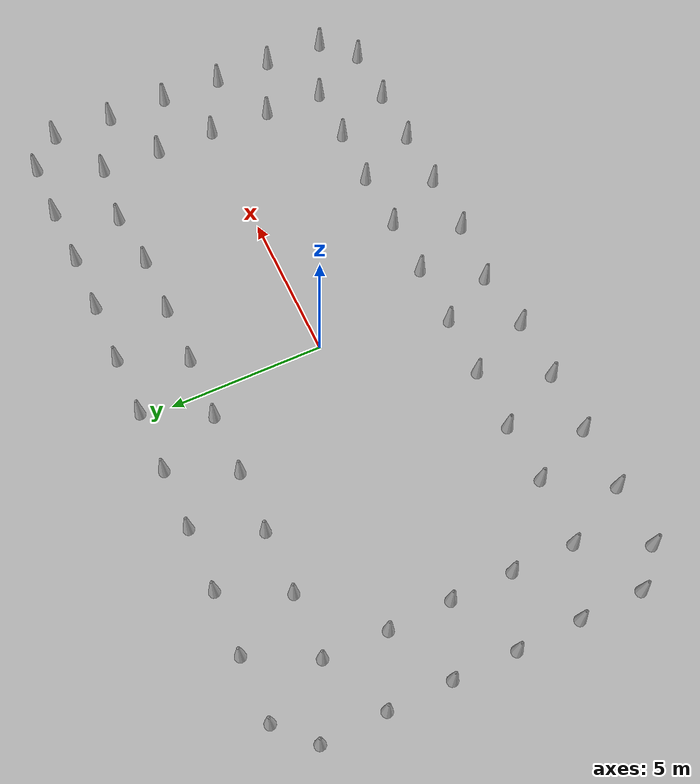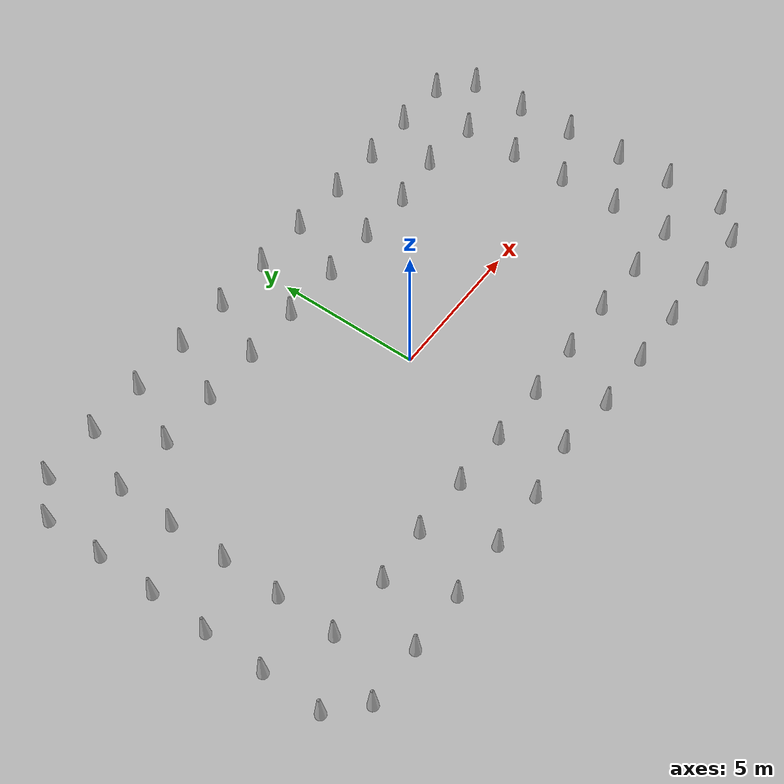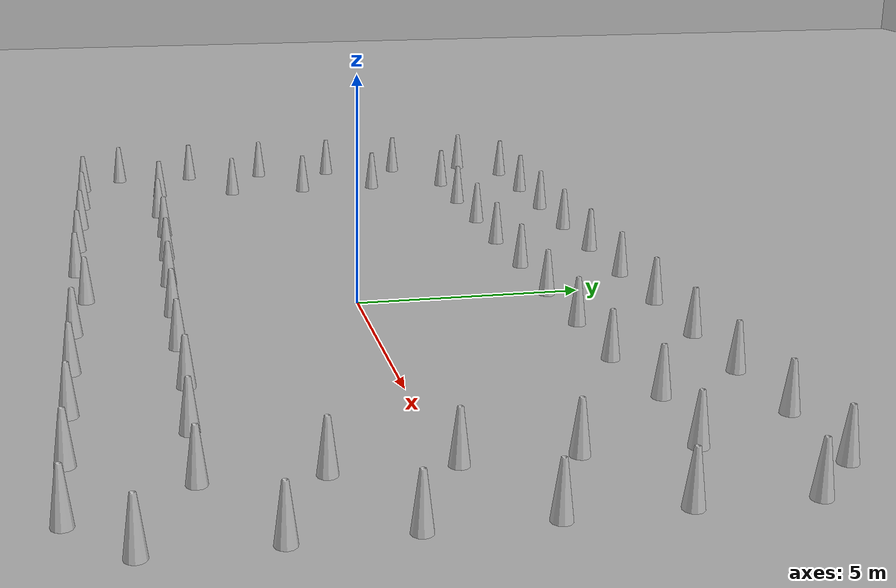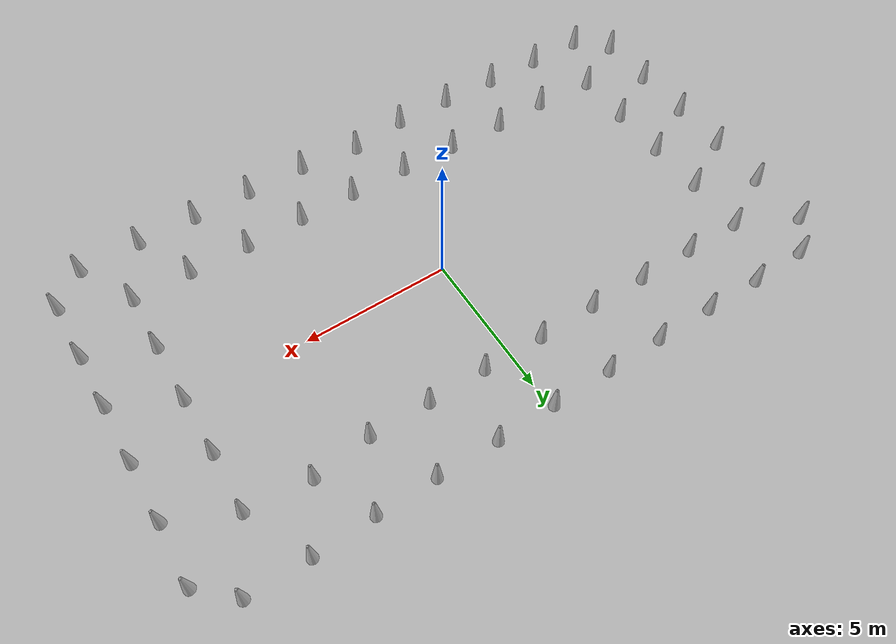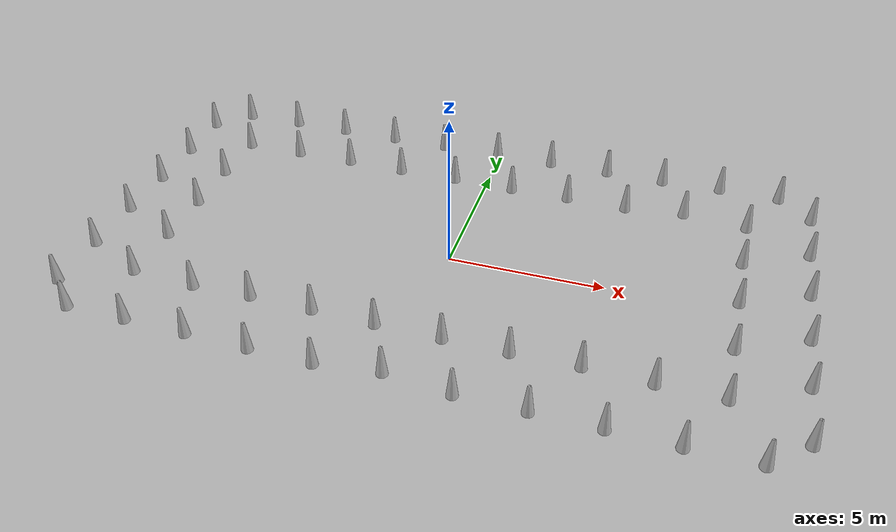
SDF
<sdf version="1.7">
 <world name="default">
  <model name="ground_plane">
   <static>1</static>
   <link name="link">
    <collision name="collision">
     <geometry><plane><normal>0 0 1</normal><size>100 100</size></plane></geometry>
     <surface><friction><ode><mu>100</mu><mu2>50</mu2></ode></friction></surface>
    </collision>
    <visual name="visual">
     <cast_shadows>0</cast_shadows>
     <geometry><plane><normal>0 0 1</normal><size>100 100</size></plane></geometry>
     <material>
      <script><uri>file://media/materials/scripts/gazebo.material</uri><name>Gazebo/Grey</name></script>
     </material>
    </visual>
    <velocity_decay><linear>0</linear><angular>0</angular></velocity_decay>
   </link>
  </model>
  <model name="Construction Cone">
   <link name="link">
    <collision name="collision">
     <geometry>
      <mesh><scale>10 10 10</scale><uri>model://construction_cone/meshes/construction_cone.dae</uri></mesh>
     </geometry>
    </collision>
    <visual name="visual">
     <geometry>
      <mesh><scale>10 10 10</scale><uri>model://construction_cone/meshes/construction_cone.dae</uri></mesh>
     </geometry>
    </visual>
    <velocity_decay><linear>0</linear><angular>0</angular></velocity_decay>
    <inertial>
     <inertia><ixx>1</ixx><ixy>0</ixy><ixz>0</ixz><iyy>1</iyy><iyz>0</iyz><izz>1</izz></inertia>
     <mass>1</mass>
    </inertial>
   </link>
   <pose>-0.101268 -5.78937 0.225548 -4.2e-05 6.7e-05 -0.720502</pose>
   <static>0</static>
  </model>
  <model name="Construction Cone_0">
   <link name="link">
    <collision name="collision">
     <geometry>
      <mesh><scale>10 10 10</scale><uri>model://construction_cone/meshes/construction_cone.dae</uri></mesh>
     </geometry>
    </collision>
    <visual name="visual">
     <geometry>
      <mesh><scale>10 10 10</scale><uri>model://construction_cone/meshes/construction_cone.dae</uri></mesh>
     </geometry>
    </visual>
    <velocity_decay><linear>0</linear><angular>0</angular></velocity_decay>
    <inertial>
     <inertia><ixx>1</ixx><ixy>0</ixy><ixz>0</ixz><iyy>1</iyy><iyz>0</iyz><izz>1</izz></inertia>
     <mass>1</mass>
    </inertial>
   </link>
   <pose>0.010167 5.99373 0.22554 8e-06 -1.6e-05 -0.04956</pose>
   <static>0</static>
  </model>
  <model name="Construction Cone_1">
   <link name="link">
    <collision name="collision">
     <geometry>
      <mesh><scale>10 10 10</scale><uri>model://construction_cone/meshes/construction_cone.dae</uri></mesh>
     </geometry>
    </collision>
    <visual name="visual">
     <geometry>
      <mesh><scale>10 10 10</scale><uri>model://construction_cone/meshes/construction_cone.dae</uri></mesh>
     </geometry>
    </visual>
    <velocity_decay><linear>0</linear><angular>0</angular></velocity_decay>
    <inertial>
     <inertia><ixx>1</ixx><ixy>0</ixy><ixz>0</ixz><iyy>1</iyy><iyz>0</iyz><izz>1</izz></inertia>
     <mass>1</mass>
    </inertial>
   </link>
   <pose>1.03588 -4.03189 0.224662 2e-05 -2.3e-05 -0.022784</pose>
   <static>0</static>
  </model>
  <model name="Construction Cone_clone">
   <link name="link">
    <collision name="collision">
     <geometry>
      <mesh><scale>10 10 10</scale><uri>model://construction_cone/meshes/construction_cone.dae</uri></mesh>
     </geometry>
    </collision>
    <visual name="visual">
     <geometry>
      <mesh><scale>10 10 10</scale><uri>model://construction_cone/meshes/construction_cone.dae</uri></mesh>
     </geometry>
    </visual>
    <velocity_decay><linear>0</linear><angular>0</angular></velocity_decay>
    <inertial>
     <inertia><ixx>1</ixx><ixy>0</ixy><ixz>0</ixz><iyy>1</iyy><iyz>0</iyz><izz>1</izz></inertia>
     <mass>1</mass>
    </inertial>
   </link>
   <pose>1.95359 -6.0042 0.22554 8e-06 -1.6e-05 -0.029289</pose>
   <static>0</static>
  </model>
  <model name="Construction Cone_clone_0">
   <link name="link">
    <collision name="collision">
     <geometry>
      <mesh><scale>10 10 10</scale><uri>model://construction_cone/meshes/construction_cone.dae</uri></mesh>
     </geometry>
    </collision>
    <visual name="visual">
     <geometry>
      <mesh><scale>10 10 10</scale><uri>model://construction_cone/meshes/construction_cone.dae</uri></mesh>
     </geometry>
    </visual>
    <velocity_decay><linear>0</linear><angular>0</angular></velocity_decay>
    <inertial>
     <inertia><ixx>1</ixx><ixy>0</ixy><ixz>0</ixz><iyy>1</iyy><iyz>0</iyz><izz>1</izz></inertia>
     <mass>1</mass>
    </inertial>
   </link>
   <pose>4.00294 -6.00683 0.225525 7.7e-05 -9.7e-05 -0.028538</pose>
   <static>0</static>
  </model>
  <model name="Construction Cone_clone_1">
   <link name="link">
    <collision name="collision">
     <geometry>
      <mesh><scale>10 10 10</scale><uri>model://construction_cone/meshes/construction_cone.dae</uri></mesh>
     </geometry>
    </collision>
    <visual name="visual">
     <geometry>
      <mesh><scale>10 10 10</scale><uri>model://construction_cone/meshes/construction_cone.dae</uri></mesh>
     </geometry>
    </visual>
    <velocity_decay><linear>0</linear><angular>0</angular></velocity_decay>
    <inertial>
     <inertia><ixx>1</ixx><ixy>0</ixy><ixz>0</ixz><iyy>1</iyy><iyz>0</iyz><izz>1</izz></inertia>
     <mass>1</mass>
    </inertial>
   </link>
   <pose>5.99737 -6.00462 0.225517 -9.9e-05 4.9e-05 -0.028861</pose>
   <static>0</static>
  </model>
  <model name="Construction Cone_clone_2">
   <link name="link">
    <collision name="collision">
     <geometry>
      <mesh><scale>10 10 10</scale><uri>model://construction_cone/meshes/construction_cone.dae</uri></mesh>
     </geometry>
    </collision>
    <visual name="visual">
     <geometry>
      <mesh><scale>10 10 10</scale><uri>model://construction_cone/meshes/construction_cone.dae</uri></mesh>
     </geometry>
    </visual>
    <velocity_decay><linear>0</linear><angular>0</angular></velocity_decay>
    <inertial>
     <inertia><ixx>1</ixx><ixy>0</ixy><ixz>0</ixz><iyy>1</iyy><iyz>0</iyz><izz>1</izz></inertia>
     <mass>1</mass>
    </inertial>
   </link>
   <pose>7.95892 -6.00963 0.225525 7.7e-05 -9.7e-05 -0.028514</pose>
   <static>0</static>
  </model>
  <model name="Construction Cone_clone_3">
   <link name="link">
    <collision name="collision">
     <geometry>
      <mesh><scale>10 10 10</scale><uri>model://construction_cone/meshes/construction_cone.dae</uri></mesh>
     </geometry>
    </collision>
    <visual name="visual">
     <geometry>
      <mesh><scale>10 10 10</scale><uri>model://construction_cone/meshes/construction_cone.dae</uri></mesh>
     </geometry>
    </visual>
    <velocity_decay><linear>0</linear><angular>0</angular></velocity_decay>
    <inertial>
     <inertia><ixx>1</ixx><ixy>0</ixy><ixz>0</ixz><iyy>1</iyy><iyz>0</iyz><izz>1</izz></inertia>
     <mass>1</mass>
    </inertial>
   </link>
   <pose>-2.05172 -6.03054 0.224663 1.4e-05 -2.8e-05 -0.029409</pose>
   <static>0</static>
  </model>
  <model name="Construction Cone_clone_4">
   <link name="link">
    <collision name="collision">
     <geometry>
      <mesh><scale>10 10 10</scale><uri>model://construction_cone/meshes/construction_cone.dae</uri></mesh>
     </geometry>
    </collision>
    <visual name="visual">
     <geometry>
      <mesh><scale>10 10 10</scale><uri>model://construction_cone/meshes/construction_cone.dae</uri></mesh>
     </geometry>
    </visual>
    <velocity_decay><linear>0</linear><angular>0</angular></velocity_decay>
    <inertial>
     <inertia><ixx>1</ixx><ixy>0</ixy><ixz>0</ixz><iyy>1</iyy><iyz>0</iyz><izz>1</izz></inertia>
     <mass>1</mass>
    </inertial>
   </link>
   <pose>-4.0299 -6.01906 0.224662 2.8e-05 -1.2e-05 -0.028564</pose>
   <static>0</static>
  </model>
  <model name="Construction Cone_0_clone_3_clone_1">
   <link name="link">
    <collision name="collision">
     <geometry>
      <mesh><scale>10 10 10</scale><uri>model://construction_cone/meshes/construction_cone.dae</uri></mesh>
     </geometry>
    </collision>
    <visual name="visual">
     <geometry>
      <mesh><scale>10 10 10</scale><uri>model://construction_cone/meshes/construction_cone.dae</uri></mesh>
     </geometry>
    </visual>
    <velocity_decay><linear>0</linear><angular>0</angular></velocity_decay>
    <inertial>
     <inertia><ixx>1</ixx><ixy>0</ixy><ixz>0</ixz><iyy>1</iyy><iyz>0</iyz><izz>1</izz></inertia>
     <mass>1</mass>
    </inertial>
   </link>
   <pose>-4.00231 5.97932 0.224663 1.4e-05 -2.8e-05 -0.022166</pose>
   <static>0</static>
  </model>
  <model name="Construction Cone_0_clone_3_clone_2">
   <link name="link">
    <collision name="collision">
     <geometry>
      <mesh><scale>10 10 10</scale><uri>model://construction_cone/meshes/construction_cone.dae</uri></mesh>
     </geometry>
    </collision>
    <visual name="visual">
     <geometry>
      <mesh><scale>10 10 10</scale><uri>model://construction_cone/meshes/construction_cone.dae</uri></mesh>
     </geometry>
    </visual>
    <velocity_decay><linear>0</linear><angular>0</angular></velocity_decay>
    <inertial>
     <inertia><ixx>1</ixx><ixy>0</ixy><ixz>0</ixz><iyy>1</iyy><iyz>0</iyz><izz>1</izz></inertia>
     <mass>1</mass>
    </inertial>
   </link>
   <pose>-2.03982 5.98994 0.22554 1.6e-05 -7e-06 -0.022505</pose>
   <static>0</static>
  </model>
  <model name="Construction Cone_0_clone_3_clone_3">
   <link name="link">
    <collision name="collision">
     <geometry>
      <mesh><scale>10 10 10</scale><uri>model://construction_cone/meshes/construction_cone.dae</uri></mesh>
     </geometry>
    </collision>
    <visual name="visual">
     <geometry>
      <mesh><scale>10 10 10</scale><uri>model://construction_cone/meshes/construction_cone.dae</uri></mesh>
     </geometry>
    </visual>
    <velocity_decay><linear>0</linear><angular>0</angular></velocity_decay>
    <inertial>
     <inertia><ixx>1</ixx><ixy>0</ixy><ixz>0</ixz><iyy>1</iyy><iyz>0</iyz><izz>1</izz></inertia>
     <mass>1</mass>
    </inertial>
   </link>
   <pose>1.9993 6.01297 0.224663 1.4e-05 -2.8e-05 -0.02285</pose>
   <static>0</static>
  </model>
  <model name="Construction Cone_clone_2_clone">
   <link name="link">
    <collision name="collision">
     <geometry>
      <mesh><scale>10 10 10</scale><uri>model://construction_cone/meshes/construction_cone.dae</uri></mesh>
     </geometry>
    </collision>
    <visual name="visual">
     <geometry>
      <mesh><scale>10 10 10</scale><uri>model://construction_cone/meshes/construction_cone.dae</uri></mesh>
     </geometry>
    </visual>
    <velocity_decay><linear>0</linear><angular>0</angular></velocity_decay>
    <inertial>
     <inertia><ixx>1</ixx><ixy>0</ixy><ixz>0</ixz><iyy>1</iyy><iyz>0</iyz><izz>1</izz></inertia>
     <mass>1</mass>
    </inertial>
   </link>
   <pose>9.95852 -5.99311 0.225525 7.7e-05 -9.7e-05 -0.028497</pose>
   <static>0</static>
  </model>
  <model name="Construction Cone_clone_2_clone_0">
   <link name="link">
    <collision name="collision">
     <geometry>
      <mesh><scale>10 10 10</scale><uri>model://construction_cone/meshes/construction_cone.dae</uri></mesh>
     </geometry>
    </collision>
    <visual name="visual">
     <geometry>
      <mesh><scale>10 10 10</scale><uri>model://construction_cone/meshes/construction_cone.dae</uri></mesh>
     </geometry>
    </visual>
    <velocity_decay><linear>0</linear><angular>0</angular></velocity_decay>
    <inertial>
     <inertia><ixx>1</ixx><ixy>0</ixy><ixz>0</ixz><iyy>1</iyy><iyz>0</iyz><izz>1</izz></inertia>
     <mass>1</mass>
    </inertial>
   </link>
   <pose>11.0426 -4.98841 0.22554 8e-06 -1.6e-05 -0.029536</pose>
   <static>0</static>
  </model>
  <model name="Construction Cone_clone_2_clone_1">
   <link name="link">
    <collision name="collision">
     <geometry>
      <mesh><scale>10 10 10</scale><uri>model://construction_cone/meshes/construction_cone.dae</uri></mesh>
     </geometry>
    </collision>
    <visual name="visual">
     <geometry>
      <mesh><scale>10 10 10</scale><uri>model://construction_cone/meshes/construction_cone.dae</uri></mesh>
     </geometry>
    </visual>
    <velocity_decay><linear>0</linear><angular>0</angular></velocity_decay>
    <inertial>
     <inertia><ixx>1</ixx><ixy>0</ixy><ixz>0</ixz><iyy>1</iyy><iyz>0</iyz><izz>1</izz></inertia>
     <mass>1</mass>
    </inertial>
   </link>
   <pose>11.0228 -2.93825 0.224663 1.4e-05 -2.8e-05 -0.028687</pose>
   <static>0</static>
  </model>
  <model name="Construction Cone_clone_2_clone_2">
   <link name="link">
    <collision name="collision">
     <geometry>
      <mesh><scale>10 10 10</scale><uri>model://construction_cone/meshes/construction_cone.dae</uri></mesh>
     </geometry>
    </collision>
    <visual name="visual">
     <geometry>
      <mesh><scale>10 10 10</scale><uri>model://construction_cone/meshes/construction_cone.dae</uri></mesh>
     </geometry>
    </visual>
    <velocity_decay><linear>0</linear><angular>0</angular></velocity_decay>
    <inertial>
     <inertia><ixx>1</ixx><ixy>0</ixy><ixz>0</ixz><iyy>1</iyy><iyz>0</iyz><izz>1</izz></inertia>
     <mass>1</mass>
    </inertial>
   </link>
   <pose>11.006 -1.01301 0.225525 7.7e-05 -9.7e-05 -0.028544</pose>
   <static>0</static>
  </model>
  <model name="Construction Cone_clone_2_clone_3">
   <link name="link">
    <collision name="collision">
     <geometry>
      <mesh><scale>10 10 10</scale><uri>model://construction_cone/meshes/construction_cone.dae</uri></mesh>
     </geometry>
    </collision>
    <visual name="visual">
     <geometry>
      <mesh><scale>10 10 10</scale><uri>model://construction_cone/meshes/construction_cone.dae</uri></mesh>
     </geometry>
    </visual>
    <velocity_decay><linear>0</linear><angular>0</angular></velocity_decay>
    <inertial>
     <inertia><ixx>1</ixx><ixy>0</ixy><ixz>0</ixz><iyy>1</iyy><iyz>0</iyz><izz>1</izz></inertia>
     <mass>1</mass>
    </inertial>
   </link>
   <pose>10.9984 1.02945 0.224663 1.4e-05 -2.8e-05 -0.028687</pose>
   <static>0</static>
  </model>
  <model name="Construction Cone_clone_2_clone_4">
   <link name="link">
    <collision name="collision">
     <geometry>
      <mesh><scale>10 10 10</scale><uri>model://construction_cone/meshes/construction_cone.dae</uri></mesh>
     </geometry>
    </collision>
    <visual name="visual">
     <geometry>
      <mesh><scale>10 10 10</scale><uri>model://construction_cone/meshes/construction_cone.dae</uri></mesh>
     </geometry>
    </visual>
    <velocity_decay><linear>0</linear><angular>0</angular></velocity_decay>
    <inertial>
     <inertia><ixx>1</ixx><ixy>0</ixy><ixz>0</ixz><iyy>1</iyy><iyz>0</iyz><izz>1</izz></inertia>
     <mass>1</mass>
    </inertial>
   </link>
   <pose>10.9743 3.03431 0.225525 7.7e-05 -9.7e-05 -0.02856</pose>
   <static>0</static>
  </model>
  <model name="Construction Cone_clone_2_clone_5">
   <link name="link">
    <collision name="collision">
     <geometry>
      <mesh><scale>10 10 10</scale><uri>model://construction_cone/meshes/construction_cone.dae</uri></mesh>
     </geometry>
    </collision>
    <visual name="visual">
     <geometry>
      <mesh><scale>10 10 10</scale><uri>model://construction_cone/meshes/construction_cone.dae</uri></mesh>
     </geometry>
    </visual>
    <velocity_decay><linear>0</linear><angular>0</angular></velocity_decay>
    <inertial>
     <inertia><ixx>1</ixx><ixy>0</ixy><ixz>0</ixz><iyy>1</iyy><iyz>0</iyz><izz>1</izz></inertia>
     <mass>1</mass>
    </inertial>
   </link>
   <pose>11.0012 5.03417 0.225525 7.7e-05 -9.7e-05 -0.028544</pose>
   <static>0</static>
  </model>
  <model name="Construction Cone_clone_2_clone_6">
   <link name="link">
    <collision name="collision">
     <geometry>
      <mesh><scale>10 10 10</scale><uri>model://construction_cone/meshes/construction_cone.dae</uri></mesh>
     </geometry>
    </collision>
    <visual name="visual">
     <geometry>
      <mesh><scale>10 10 10</scale><uri>model://construction_cone/meshes/construction_cone.dae</uri></mesh>
     </geometry>
    </visual>
    <velocity_decay><linear>0</linear><angular>0</angular></velocity_decay>
    <inertial>
     <inertia><ixx>1</ixx><ixy>0</ixy><ixz>0</ixz><iyy>1</iyy><iyz>0</iyz><izz>1</izz></inertia>
     <mass>1</mass>
    </inertial>
   </link>
   <pose>9.94514 6.03179 0.225525 7.7e-05 -9.7e-05 -0.028541</pose>
   <static>0</static>
  </model>
  <model name="Construction Cone_clone_2_clone_7">
   <link name="link">
    <collision name="collision">
     <geometry>
      <mesh><scale>10 10 10</scale><uri>model://construction_cone/meshes/construction_cone.dae</uri></mesh>
     </geometry>
    </collision>
    <visual name="visual">
     <geometry>
      <mesh><scale>10 10 10</scale><uri>model://construction_cone/meshes/construction_cone.dae</uri></mesh>
     </geometry>
    </visual>
    <velocity_decay><linear>0</linear><angular>0</angular></velocity_decay>
    <inertial>
     <inertia><ixx>1</ixx><ixy>0</ixy><ixz>0</ixz><iyy>1</iyy><iyz>0</iyz><izz>1</izz></inertia>
     <mass>1</mass>
    </inertial>
   </link>
   <pose>7.97236 6.05343 0.225569 0.000124 -0.000139 -0.955824</pose>
   <static>0</static>
  </model>
  <model name="Construction Cone_clone_2_clone_8">
   <link name="link">
    <collision name="collision">
     <geometry>
      <mesh><scale>10 10 10</scale><uri>model://construction_cone/meshes/construction_cone.dae</uri></mesh>
     </geometry>
    </collision>
    <visual name="visual">
     <geometry>
      <mesh><scale>10 10 10</scale><uri>model://construction_cone/meshes/construction_cone.dae</uri></mesh>
     </geometry>
    </visual>
    <velocity_decay><linear>0</linear><angular>0</angular></velocity_decay>
    <inertial>
     <inertia><ixx>1</ixx><ixy>0</ixy><ixz>0</ixz><iyy>1</iyy><iyz>0</iyz><izz>1</izz></inertia>
     <mass>1</mass>
    </inertial>
   </link>
   <pose>6.00156 5.99399 0.225525 7.7e-05 -9.7e-05 -0.028544</pose>
   <static>0</static>
  </model>
  <model name="Construction Cone_clone_2_clone_9">
   <link name="link">
    <collision name="collision">
     <geometry>
      <mesh><scale>10 10 10</scale><uri>model://construction_cone/meshes/construction_cone.dae</uri></mesh>
     </geometry>
    </collision>
    <visual name="visual">
     <geometry>
      <mesh><scale>10 10 10</scale><uri>model://construction_cone/meshes/construction_cone.dae</uri></mesh>
     </geometry>
    </visual>
    <velocity_decay><linear>0</linear><angular>0</angular></velocity_decay>
    <inertial>
     <inertia><ixx>1</ixx><ixy>0</ixy><ixz>0</ixz><iyy>1</iyy><iyz>0</iyz><izz>1</izz></inertia>
     <mass>1</mass>
    </inertial>
   </link>
   <pose>4.04544 5.99477 0.225515 -6.3e-05 0.000106 -0.028964</pose>
   <static>0</static>
  </model>
  <model name="Construction Cone_clone_2_clone_10">
   <link name="link">
    <collision name="collision">
     <geometry>
      <mesh><scale>10 10 10</scale><uri>model://construction_cone/meshes/construction_cone.dae</uri></mesh>
     </geometry>
    </collision>
    <visual name="visual">
     <geometry>
      <mesh><scale>10 10 10</scale><uri>model://construction_cone/meshes/construction_cone.dae</uri></mesh>
     </geometry>
    </visual>
    <velocity_decay><linear>0</linear><angular>0</angular></velocity_decay>
    <inertial>
     <inertia><ixx>1</ixx><ixy>0</ixy><ixz>0</ixz><iyy>1</iyy><iyz>0</iyz><izz>1</izz></inertia>
     <mass>1</mass>
    </inertial>
   </link>
   <pose>-6.01837 5.9927 0.225515 -6.3e-05 0.000106 -0.028977</pose>
   <static>0</static>
  </model>
  <model name="Construction Cone_clone_2_clone_11">
   <link name="link">
    <collision name="collision">
     <geometry>
      <mesh><scale>10 10 10</scale><uri>model://construction_cone/meshes/construction_cone.dae</uri></mesh>
     </geometry>
    </collision>
    <visual name="visual">
     <geometry>
      <mesh><scale>10 10 10</scale><uri>model://construction_cone/meshes/construction_cone.dae</uri></mesh>
     </geometry>
    </visual>
    <velocity_decay><linear>0</linear><angular>0</angular></velocity_decay>
    <inertial>
     <inertia><ixx>1</ixx><ixy>0</ixy><ixz>0</ixz><iyy>1</iyy><iyz>0</iyz><izz>1</izz></inertia>
     <mass>1</mass>
    </inertial>
   </link>
   <pose>-7.98666 6.01621 0.225515 -6.3e-05 0.000106 -0.029065</pose>
   <static>0</static>
  </model>
  <model name="Construction Cone_clone_2_clone_12">
   <link name="link">
    <collision name="collision">
     <geometry>
      <mesh><scale>10 10 10</scale><uri>model://construction_cone/meshes/construction_cone.dae</uri></mesh>
     </geometry>
    </collision>
    <visual name="visual">
     <geometry>
      <mesh><scale>10 10 10</scale><uri>model://construction_cone/meshes/construction_cone.dae</uri></mesh>
     </geometry>
    </visual>
    <velocity_decay><linear>0</linear><angular>0</angular></velocity_decay>
    <inertial>
     <inertia><ixx>1</ixx><ixy>0</ixy><ixz>0</ixz><iyy>1</iyy><iyz>0</iyz><izz>1</izz></inertia>
     <mass>1</mass>
    </inertial>
   </link>
   <pose>-9.97243 5.98087 0.225525 7.7e-05 -9.7e-05 -0.028541</pose>
   <static>0</static>
  </model>
  <model name="Construction Cone_clone_2_clone_13">
   <link name="link">
    <collision name="collision">
     <geometry>
      <mesh><scale>10 10 10</scale><uri>model://construction_cone/meshes/construction_cone.dae</uri></mesh>
     </geometry>
    </collision>
    <visual name="visual">
     <geometry>
      <mesh><scale>10 10 10</scale><uri>model://construction_cone/meshes/construction_cone.dae</uri></mesh>
     </geometry>
    </visual>
    <velocity_decay><linear>0</linear><angular>0</angular></velocity_decay>
    <inertial>
     <inertia><ixx>1</ixx><ixy>0</ixy><ixz>0</ixz><iyy>1</iyy><iyz>0</iyz><izz>1</izz></inertia>
     <mass>1</mass>
    </inertial>
   </link>
   <pose>-11.0075 4.97609 0.225525 7.7e-05 -9.7e-05 -0.028544</pose>
   <static>0</static>
  </model>
  <model name="Construction Cone_clone_2_clone_14">
   <link name="link">
    <collision name="collision">
     <geometry>
      <mesh><scale>10 10 10</scale><uri>model://construction_cone/meshes/construction_cone.dae</uri></mesh>
     </geometry>
    </collision>
    <visual name="visual">
     <geometry>
      <mesh><scale>10 10 10</scale><uri>model://construction_cone/meshes/construction_cone.dae</uri></mesh>
     </geometry>
    </visual>
    <velocity_decay><linear>0</linear><angular>0</angular></velocity_decay>
    <inertial>
     <inertia><ixx>1</ixx><ixy>0</ixy><ixz>0</ixz><iyy>1</iyy><iyz>0</iyz><izz>1</izz></inertia>
     <mass>1</mass>
    </inertial>
   </link>
   <pose>-10.9735 2.97827 0.225525 7.7e-05 -9.7e-05 -0.028544</pose>
   <static>0</static>
  </model>
  <model name="Construction Cone_clone_2_clone_15">
   <link name="link">
    <collision name="collision">
     <geometry>
      <mesh><scale>10 10 10</scale><uri>model://construction_cone/meshes/construction_cone.dae</uri></mesh>
     </geometry>
    </collision>
    <visual name="visual">
     <geometry>
      <mesh><scale>10 10 10</scale><uri>model://construction_cone/meshes/construction_cone.dae</uri></mesh>
     </geometry>
    </visual>
    <velocity_decay><linear>0</linear><angular>0</angular></velocity_decay>
    <inertial>
     <inertia><ixx>1</ixx><ixy>0</ixy><ixz>0</ixz><iyy>1</iyy><iyz>0</iyz><izz>1</izz></inertia>
     <mass>1</mass>
    </inertial>
   </link>
   <pose>-10.9743 0.995984 0.225525 7.7e-05 -9.7e-05 -0.028543</pose>
   <static>0</static>
  </model>
  <model name="Construction Cone_clone_2_clone_16">
   <link name="link">
    <collision name="collision">
     <geometry>
      <mesh><scale>10 10 10</scale><uri>model://construction_cone/meshes/construction_cone.dae</uri></mesh>
     </geometry>
    </collision>
    <visual name="visual">
     <geometry>
      <mesh><scale>10 10 10</scale><uri>model://construction_cone/meshes/construction_cone.dae</uri></mesh>
     </geometry>
    </visual>
    <velocity_decay><linear>0</linear><angular>0</angular></velocity_decay>
    <inertial>
     <inertia><ixx>1</ixx><ixy>0</ixy><ixz>0</ixz><iyy>1</iyy><iyz>0</iyz><izz>1</izz></inertia>
     <mass>1</mass>
    </inertial>
   </link>
   <pose>-10.9991 -0.983905 0.225525 7.7e-05 -9.7e-05 -0.028558</pose>
   <static>0</static>
  </model>
  <model name="Construction Cone_clone_2_clone_17">
   <link name="link">
    <collision name="collision">
     <geometry>
      <mesh><scale>10 10 10</scale><uri>model://construction_cone/meshes/construction_cone.dae</uri></mesh>
     </geometry>
    </collision>
    <visual name="visual">
     <geometry>
      <mesh><scale>10 10 10</scale><uri>model://construction_cone/meshes/construction_cone.dae</uri></mesh>
     </geometry>
    </visual>
    <velocity_decay><linear>0</linear><angular>0</angular></velocity_decay>
    <inertial>
     <inertia><ixx>1</ixx><ixy>0</ixy><ixz>0</ixz><iyy>1</iyy><iyz>0</iyz><izz>1</izz></inertia>
     <mass>1</mass>
    </inertial>
   </link>
   <pose>-10.9729 -3.00579 0.225525 7.7e-05 -9.7e-05 -0.02856</pose>
   <static>0</static>
  </model>
  <model name="Construction Cone_clone_2_clone_18">
   <link name="link">
    <collision name="collision">
     <geometry>
      <mesh><scale>10 10 10</scale><uri>model://construction_cone/meshes/construction_cone.dae</uri></mesh>
     </geometry>
    </collision>
    <visual name="visual">
     <geometry>
      <mesh><scale>10 10 10</scale><uri>model://construction_cone/meshes/construction_cone.dae</uri></mesh>
     </geometry>
    </visual>
    <velocity_decay><linear>0</linear><angular>0</angular></velocity_decay>
    <inertial>
     <inertia><ixx>1</ixx><ixy>0</ixy><ixz>0</ixz><iyy>1</iyy><iyz>0</iyz><izz>1</izz></inertia>
     <mass>1</mass>
    </inertial>
   </link>
   <pose>-10.9711 -4.98833 0.225515 -6.3e-05 0.000106 -0.029172</pose>
   <static>0</static>
  </model>
  <model name="Construction Cone_clone_2_clone_19">
   <link name="link">
    <collision name="collision">
     <geometry>
      <mesh><scale>10 10 10</scale><uri>model://construction_cone/meshes/construction_cone.dae</uri></mesh>
     </geometry>
    </collision>
    <visual name="visual">
     <geometry>
      <mesh><scale>10 10 10</scale><uri>model://construction_cone/meshes/construction_cone.dae</uri></mesh>
     </geometry>
    </visual>
    <velocity_decay><linear>0</linear><angular>0</angular></velocity_decay>
    <inertial>
     <inertia><ixx>1</ixx><ixy>0</ixy><ixz>0</ixz><iyy>1</iyy><iyz>0</iyz><izz>1</izz></inertia>
     <mass>1</mass>
    </inertial>
   </link>
   <pose>-9.95246 -5.97281 0.225515 -6.3e-05 0.000106 -0.029002</pose>
   <static>0</static>
  </model>
  <model name="Construction Cone_clone_2_clone_20">
   <link name="link">
    <collision name="collision">
     <geometry>
      <mesh><scale>10 10 10</scale><uri>model://construction_cone/meshes/construction_cone.dae</uri></mesh>
     </geometry>
    </collision>
    <visual name="visual">
     <geometry>
      <mesh><scale>10 10 10</scale><uri>model://construction_cone/meshes/construction_cone.dae</uri></mesh>
     </geometry>
    </visual>
    <velocity_decay><linear>0</linear><angular>0</angular></velocity_decay>
    <inertial>
     <inertia><ixx>1</ixx><ixy>0</ixy><ixz>0</ixz><iyy>1</iyy><iyz>0</iyz><izz>1</izz></inertia>
     <mass>1</mass>
    </inertial>
   </link>
   <pose>-8.00717 -5.9722 0.225515 -6.3e-05 0.000106 -0.028977</pose>
   <static>0</static>
  </model>
  <model name="Construction Cone_clone_2_clone_21">
   <link name="link">
    <collision name="collision">
     <geometry>
      <mesh><scale>10 10 10</scale><uri>model://construction_cone/meshes/construction_cone.dae</uri></mesh>
     </geometry>
    </collision>
    <visual name="visual">
     <geometry>
      <mesh><scale>10 10 10</scale><uri>model://construction_cone/meshes/construction_cone.dae</uri></mesh>
     </geometry>
    </visual>
    <velocity_decay><linear>0</linear><angular>0</angular></velocity_decay>
    <inertial>
     <inertia><ixx>1</ixx><ixy>0</ixy><ixz>0</ixz><iyy>1</iyy><iyz>0</iyz><izz>1</izz></inertia>
     <mass>1</mass>
    </inertial>
   </link>
   <pose>-6.02075 -5.98815 0.225516 0.000117 3.3e-05 -0.02871</pose>
   <static>0</static>
  </model>
  <model name="Construction Cone_1_clone">
   <link name="link">
    <collision name="collision">
     <geometry>
      <mesh><scale>10 10 10</scale><uri>model://construction_cone/meshes/construction_cone.dae</uri></mesh>
     </geometry>
    </collision>
    <visual name="visual">
     <geometry>
      <mesh><scale>10 10 10</scale><uri>model://construction_cone/meshes/construction_cone.dae</uri></mesh>
     </geometry>
    </visual>
    <velocity_decay><linear>0</linear><angular>0</angular></velocity_decay>
    <inertial>
     <inertia><ixx>1</ixx><ixy>0</ixy><ixz>0</ixz><iyy>1</iyy><iyz>0</iyz><izz>1</izz></inertia>
     <mass>1</mass>
    </inertial>
   </link>
   <pose>-6.8827 -4.02377 0.224663 1.4e-05 -2.8e-05 -0.029215</pose>
   <static>0</static>
  </model>
  <model name="Construction Cone_1_clone_0">
   <link name="link">
    <collision name="collision">
     <geometry>
      <mesh><scale>10 10 10</scale><uri>model://construction_cone/meshes/construction_cone.dae</uri></mesh>
     </geometry>
    </collision>
    <visual name="visual">
     <geometry>
      <mesh><scale>10 10 10</scale><uri>model://construction_cone/meshes/construction_cone.dae</uri></mesh>
     </geometry>
    </visual>
    <velocity_decay><linear>0</linear><angular>0</angular></velocity_decay>
    <inertial>
     <inertia><ixx>1</ixx><ixy>0</ixy><ixz>0</ixz><iyy>1</iyy><iyz>0</iyz><izz>1</izz></inertia>
     <mass>1</mass>
    </inertial>
   </link>
   <pose>-8.98934 -3.91988 0.22554 8e-06 -1.6e-05 -0.029081</pose>
   <static>0</static>
  </model>
  <model name="Construction Cone_1_clone_1">
   <link name="link">
    <collision name="collision">
     <geometry>
      <mesh><scale>10 10 10</scale><uri>model://construction_cone/meshes/construction_cone.dae</uri></mesh>
     </geometry>
    </collision>
    <visual name="visual">
     <geometry>
      <mesh><scale>10 10 10</scale><uri>model://construction_cone/meshes/construction_cone.dae</uri></mesh>
     </geometry>
    </visual>
    <velocity_decay><linear>0</linear><angular>0</angular></velocity_decay>
    <inertial>
     <inertia><ixx>1</ixx><ixy>0</ixy><ixz>0</ixz><iyy>1</iyy><iyz>0</iyz><izz>1</izz></inertia>
     <mass>1</mass>
    </inertial>
   </link>
   <pose>-8.98751 -1.92973 0.224663 1.4e-05 -2.8e-05 -0.029281</pose>
   <static>0</static>
  </model>
  <model name="Construction Cone_1_clone_2">
   <link name="link">
    <collision name="collision">
     <geometry>
      <mesh><scale>10 10 10</scale><uri>model://construction_cone/meshes/construction_cone.dae</uri></mesh>
     </geometry>
    </collision>
    <visual name="visual">
     <geometry>
      <mesh><scale>10 10 10</scale><uri>model://construction_cone/meshes/construction_cone.dae</uri></mesh>
     </geometry>
    </visual>
    <velocity_decay><linear>0</linear><angular>0</angular></velocity_decay>
    <inertial>
     <inertia><ixx>1</ixx><ixy>0</ixy><ixz>0</ixz><iyy>1</iyy><iyz>0</iyz><izz>1</izz></inertia>
     <mass>1</mass>
    </inertial>
   </link>
   <pose>-8.99765 0.033705 0.224663 1.4e-05 -2.8e-05 -0.029037</pose>
   <static>0</static>
  </model>
  <model name="Construction Cone_1_clone_3">
   <link name="link">
    <collision name="collision">
     <geometry>
      <mesh><scale>10 10 10</scale><uri>model://construction_cone/meshes/construction_cone.dae</uri></mesh>
     </geometry>
    </collision>
    <visual name="visual">
     <geometry>
      <mesh><scale>10 10 10</scale><uri>model://construction_cone/meshes/construction_cone.dae</uri></mesh>
     </geometry>
    </visual>
    <velocity_decay><linear>0</linear><angular>0</angular></velocity_decay>
    <inertial>
     <inertia><ixx>1</ixx><ixy>0</ixy><ixz>0</ixz><iyy>1</iyy><iyz>0</iyz><izz>1</izz></inertia>
     <mass>1</mass>
    </inertial>
   </link>
   <pose>-4.99523 -3.9547 0.224663 1.4e-05 -2.8e-05 -0.028999</pose>
   <static>0</static>
  </model>
  <model name="Construction Cone_1_clone_4">
   <link name="link">
    <collision name="collision">
     <geometry>
      <mesh><scale>10 10 10</scale><uri>model://construction_cone/meshes/construction_cone.dae</uri></mesh>
     </geometry>
    </collision>
    <visual name="visual">
     <geometry>
      <mesh><scale>10 10 10</scale><uri>model://construction_cone/meshes/construction_cone.dae</uri></mesh>
     </geometry>
    </visual>
    <velocity_decay><linear>0</linear><angular>0</angular></velocity_decay>
    <inertial>
     <inertia><ixx>1</ixx><ixy>0</ixy><ixz>0</ixz><iyy>1</iyy><iyz>0</iyz><izz>1</izz></inertia>
     <mass>1</mass>
    </inertial>
   </link>
   <pose>-2.98342 -3.98414 0.225548 -4.2e-05 6.7e-05 -0.028934</pose>
   <static>0</static>
  </model>
  <model name="Construction Cone_1_clone_5">
   <link name="link">
    <collision name="collision">
     <geometry>
      <mesh><scale>10 10 10</scale><uri>model://construction_cone/meshes/construction_cone.dae</uri></mesh>
     </geometry>
    </collision>
    <visual name="visual">
     <geometry>
      <mesh><scale>10 10 10</scale><uri>model://construction_cone/meshes/construction_cone.dae</uri></mesh>
     </geometry>
    </visual>
    <velocity_decay><linear>0</linear><angular>0</angular></velocity_decay>
    <inertial>
     <inertia><ixx>1</ixx><ixy>0</ixy><ixz>0</ixz><iyy>1</iyy><iyz>0</iyz><izz>1</izz></inertia>
     <mass>1</mass>
    </inertial>
   </link>
   <pose>-1.00483 -4.02188 0.225525 7.7e-05 -9.7e-05 -0.028879</pose>
   <static>0</static>
  </model>
  <model name="Construction Cone_1_clone_6">
   <link name="link">
    <collision name="collision">
     <geometry>
      <mesh><scale>10 10 10</scale><uri>model://construction_cone/meshes/construction_cone.dae</uri></mesh>
     </geometry>
    </collision>
    <visual name="visual">
     <geometry>
      <mesh><scale>10 10 10</scale><uri>model://construction_cone/meshes/construction_cone.dae</uri></mesh>
     </geometry>
    </visual>
    <velocity_decay><linear>0</linear><angular>0</angular></velocity_decay>
    <inertial>
     <inertia><ixx>1</ixx><ixy>0</ixy><ixz>0</ixz><iyy>1</iyy><iyz>0</iyz><izz>1</izz></inertia>
     <mass>1</mass>
    </inertial>
   </link>
   <pose>3.00006 -4.02129 0.225525 7.7e-05 -9.7e-05 -0.028901</pose>
   <static>0</static>
  </model>
  <model name="Construction Cone_1_clone_7">
   <link name="link">
    <collision name="collision">
     <geometry>
      <mesh><scale>10 10 10</scale><uri>model://construction_cone/meshes/construction_cone.dae</uri></mesh>
     </geometry>
    </collision>
    <visual name="visual">
     <geometry>
      <mesh><scale>10 10 10</scale><uri>model://construction_cone/meshes/construction_cone.dae</uri></mesh>
     </geometry>
    </visual>
    <velocity_decay><linear>0</linear><angular>0</angular></velocity_decay>
    <inertial>
     <inertia><ixx>1</ixx><ixy>0</ixy><ixz>0</ixz><iyy>1</iyy><iyz>0</iyz><izz>1</izz></inertia>
     <mass>1</mass>
    </inertial>
   </link>
   <pose>5.01683 -3.97221 0.225546 -5.4e-05 2e-06 -0.028713</pose>
   <static>0</static>
  </model>
  <model name="Construction Cone_1_clone_8">
   <link name="link">
    <collision name="collision">
     <geometry>
      <mesh><scale>10 10 10</scale><uri>model://construction_cone/meshes/construction_cone.dae</uri></mesh>
     </geometry>
    </collision>
    <visual name="visual">
     <geometry>
      <mesh><scale>10 10 10</scale><uri>model://construction_cone/meshes/construction_cone.dae</uri></mesh>
     </geometry>
    </visual>
    <velocity_decay><linear>0</linear><angular>0</angular></velocity_decay>
    <inertial>
     <inertia><ixx>1</ixx><ixy>0</ixy><ixz>0</ixz><iyy>1</iyy><iyz>0</iyz><izz>1</izz></inertia>
     <mass>1</mass>
    </inertial>
   </link>
   <pose>7.00961 -4.02803 0.225515 -6.3e-05 0.000106 -0.028804</pose>
   <static>0</static>
  </model>
  <model name="Construction Cone_1_clone_9">
   <link name="link">
    <collision name="collision">
     <geometry>
      <mesh><scale>10 10 10</scale><uri>model://construction_cone/meshes/construction_cone.dae</uri></mesh>
     </geometry>
    </collision>
    <visual name="visual">
     <geometry>
      <mesh><scale>10 10 10</scale><uri>model://construction_cone/meshes/construction_cone.dae</uri></mesh>
     </geometry>
    </visual>
    <velocity_decay><linear>0</linear><angular>0</angular></velocity_decay>
    <inertial>
     <inertia><ixx>1</ixx><ixy>0</ixy><ixz>0</ixz><iyy>1</iyy><iyz>0</iyz><izz>1</izz></inertia>
     <mass>1</mass>
    </inertial>
   </link>
   <pose>8.94287 -4.03207 0.22554 8e-06 -1.6e-05 -0.028997</pose>
   <static>0</static>
  </model>
  <model name="Construction Cone_1_clone_10">
   <link name="link">
    <collision name="collision">
     <geometry>
      <mesh><scale>10 10 10</scale><uri>model://construction_cone/meshes/construction_cone.dae</uri></mesh>
     </geometry>
    </collision>
    <visual name="visual">
     <geometry>
      <mesh><scale>10 10 10</scale><uri>model://construction_cone/meshes/construction_cone.dae</uri></mesh>
     </geometry>
    </visual>
    <velocity_decay><linear>0</linear><angular>0</angular></velocity_decay>
    <inertial>
     <inertia><ixx>1</ixx><ixy>0</ixy><ixz>0</ixz><iyy>1</iyy><iyz>0</iyz><izz>1</izz></inertia>
     <mass>1</mass>
    </inertial>
   </link>
   <pose>8.95996 -2.03935 0.224663 1.4e-05 -2.8e-05 -0.029422</pose>
   <static>0</static>
  </model>
  <model name="Construction Cone_1_clone_11">
   <link name="link">
    <collision name="collision">
     <geometry>
      <mesh><scale>10 10 10</scale><uri>model://construction_cone/meshes/construction_cone.dae</uri></mesh>
     </geometry>
    </collision>
    <visual name="visual">
     <geometry>
      <mesh><scale>10 10 10</scale><uri>model://construction_cone/meshes/construction_cone.dae</uri></mesh>
     </geometry>
    </visual>
    <velocity_decay><linear>0</linear><angular>0</angular></velocity_decay>
    <inertial>
     <inertia><ixx>1</ixx><ixy>0</ixy><ixz>0</ixz><iyy>1</iyy><iyz>0</iyz><izz>1</izz></inertia>
     <mass>1</mass>
    </inertial>
   </link>
   <pose>8.97516 0.03117 0.224663 1.4e-05 -2.8e-05 -0.029422</pose>
   <static>0</static>
  </model>
  <model name="Construction Cone_1_clone_12">
   <link name="link">
    <collision name="collision">
     <geometry>
      <mesh><scale>10 10 10</scale><uri>model://construction_cone/meshes/construction_cone.dae</uri></mesh>
     </geometry>
    </collision>
    <visual name="visual">
     <geometry>
      <mesh><scale>10 10 10</scale><uri>model://construction_cone/meshes/construction_cone.dae</uri></mesh>
     </geometry>
    </visual>
    <velocity_decay><linear>0</linear><angular>0</angular></velocity_decay>
    <inertial>
     <inertia><ixx>1</ixx><ixy>0</ixy><ixz>0</ixz><iyy>1</iyy><iyz>0</iyz><izz>1</izz></inertia>
     <mass>1</mass>
    </inertial>
   </link>
   <pose>8.95328 1.99683 0.225525 7.7e-05 -9.7e-05 -0.028764</pose>
   <static>0</static>
  </model>
  <model name="Construction Cone_1_clone_13">
   <link name="link">
    <collision name="collision">
     <geometry>
      <mesh><scale>10 10 10</scale><uri>model://construction_cone/meshes/construction_cone.dae</uri></mesh>
     </geometry>
    </collision>
    <visual name="visual">
     <geometry>
      <mesh><scale>10 10 10</scale><uri>model://construction_cone/meshes/construction_cone.dae</uri></mesh>
     </geometry>
    </visual>
    <velocity_decay><linear>0</linear><angular>0</angular></velocity_decay>
    <inertial>
     <inertia><ixx>1</ixx><ixy>0</ixy><ixz>0</ixz><iyy>1</iyy><iyz>0</iyz><izz>1</izz></inertia>
     <mass>1</mass>
    </inertial>
   </link>
   <pose>8.98306 3.97602 0.22554 8e-06 -1.6e-05 -0.029079</pose>
   <static>0</static>
  </model>
  <model name="Construction Cone_1_clone_14">
   <link name="link">
    <collision name="collision">
     <geometry>
      <mesh><scale>10 10 10</scale><uri>model://construction_cone/meshes/construction_cone.dae</uri></mesh>
     </geometry>
    </collision>
    <visual name="visual">
     <geometry>
      <mesh><scale>10 10 10</scale><uri>model://construction_cone/meshes/construction_cone.dae</uri></mesh>
     </geometry>
    </visual>
    <velocity_decay><linear>0</linear><angular>0</angular></velocity_decay>
    <inertial>
     <inertia><ixx>1</ixx><ixy>0</ixy><ixz>0</ixz><iyy>1</iyy><iyz>0</iyz><izz>1</izz></inertia>
     <mass>1</mass>
    </inertial>
   </link>
   <pose>6.9211 4.17654 0.224583 -3e-05 0.000122 -0.786938</pose>
   <static>0</static>
  </model>
  <model name="Construction Cone_1_clone_15">
   <link name="link">
    <collision name="collision">
     <geometry>
      <mesh><scale>10 10 10</scale><uri>model://construction_cone/meshes/construction_cone.dae</uri></mesh>
     </geometry>
    </collision>
    <visual name="visual">
     <geometry>
      <mesh><scale>10 10 10</scale><uri>model://construction_cone/meshes/construction_cone.dae</uri></mesh>
     </geometry>
    </visual>
    <velocity_decay><linear>0</linear><angular>0</angular></velocity_decay>
    <inertial>
     <inertia><ixx>1</ixx><ixy>0</ixy><ixz>0</ixz><iyy>1</iyy><iyz>0</iyz><izz>1</izz></inertia>
     <mass>1</mass>
    </inertial>
   </link>
   <pose>5.00058 3.95073 0.225525 7.7e-05 -9.7e-05 -0.028764</pose>
   <static>0</static>
  </model>
  <model name="Construction Cone_1_clone_16">
   <link name="link">
    <collision name="collision">
     <geometry>
      <mesh><scale>10 10 10</scale><uri>model://construction_cone/meshes/construction_cone.dae</uri></mesh>
     </geometry>
    </collision>
    <visual name="visual">
     <geometry>
      <mesh><scale>10 10 10</scale><uri>model://construction_cone/meshes/construction_cone.dae</uri></mesh>
     </geometry>
    </visual>
    <velocity_decay><linear>0</linear><angular>0</angular></velocity_decay>
    <inertial>
     <inertia><ixx>1</ixx><ixy>0</ixy><ixz>0</ixz><iyy>1</iyy><iyz>0</iyz><izz>1</izz></inertia>
     <mass>1</mass>
    </inertial>
   </link>
   <pose>3.00903 3.96759 0.225546 -5.4e-05 2e-06 -0.028714</pose>
   <static>0</static>
  </model>
  <model name="Construction Cone_1_clone_17">
   <link name="link">
    <collision name="collision">
     <geometry>
      <mesh><scale>10 10 10</scale><uri>model://construction_cone/meshes/construction_cone.dae</uri></mesh>
     </geometry>
    </collision>
    <visual name="visual">
     <geometry>
      <mesh><scale>10 10 10</scale><uri>model://construction_cone/meshes/construction_cone.dae</uri></mesh>
     </geometry>
    </visual>
    <velocity_decay><linear>0</linear><angular>0</angular></velocity_decay>
    <inertial>
     <inertia><ixx>1</ixx><ixy>0</ixy><ixz>0</ixz><iyy>1</iyy><iyz>0</iyz><izz>1</izz></inertia>
     <mass>1</mass>
    </inertial>
   </link>
   <pose>1.05165 3.95029 0.224663 1.4e-05 -2.8e-05 -0.02942</pose>
   <static>0</static>
  </model>
  <model name="Construction Cone_1_clone_18">
   <link name="link">
    <collision name="collision">
     <geometry>
      <mesh><scale>10 10 10</scale><uri>model://construction_cone/meshes/construction_cone.dae</uri></mesh>
     </geometry>
    </collision>
    <visual name="visual">
     <geometry>
      <mesh><scale>10 10 10</scale><uri>model://construction_cone/meshes/construction_cone.dae</uri></mesh>
     </geometry>
    </visual>
    <velocity_decay><linear>0</linear><angular>0</angular></velocity_decay>
    <inertial>
     <inertia><ixx>1</ixx><ixy>0</ixy><ixz>0</ixz><iyy>1</iyy><iyz>0</iyz><izz>1</izz></inertia>
     <mass>1</mass>
    </inertial>
   </link>
   <pose>-1.01808 3.97871 0.22554 8e-06 -1.6e-05 -0.029305</pose>
   <static>0</static>
  </model>
  <model name="Construction Cone_1_clone_19">
   <link name="link">
    <collision name="collision">
     <geometry>
      <mesh><scale>10 10 10</scale><uri>model://construction_cone/meshes/construction_cone.dae</uri></mesh>
     </geometry>
    </collision>
    <visual name="visual">
     <geometry>
      <mesh><scale>10 10 10</scale><uri>model://construction_cone/meshes/construction_cone.dae</uri></mesh>
     </geometry>
    </visual>
    <velocity_decay><linear>0</linear><angular>0</angular></velocity_decay>
    <inertial>
     <inertia><ixx>1</ixx><ixy>0</ixy><ixz>0</ixz><iyy>1</iyy><iyz>0</iyz><izz>1</izz></inertia>
     <mass>1</mass>
    </inertial>
   </link>
   <pose>-3.02144 3.95624 0.224663 1.4e-05 -2.8e-05 -0.029422</pose>
   <static>0</static>
  </model>
  <model name="Construction Cone_1_clone_20">
   <link name="link">
    <collision name="collision">
     <geometry>
      <mesh><scale>10 10 10</scale><uri>model://construction_cone/meshes/construction_cone.dae</uri></mesh>
     </geometry>
    </collision>
    <visual name="visual">
     <geometry>
      <mesh><scale>10 10 10</scale><uri>model://construction_cone/meshes/construction_cone.dae</uri></mesh>
     </geometry>
    </visual>
    <velocity_decay><linear>0</linear><angular>0</angular></velocity_decay>
    <inertial>
     <inertia><ixx>1</ixx><ixy>0</ixy><ixz>0</ixz><iyy>1</iyy><iyz>0</iyz><izz>1</izz></inertia>
     <mass>1</mass>
    </inertial>
   </link>
   <pose>-4.99925 3.98615 0.22554 8e-06 -1.5e-05 -0.029033</pose>
   <static>0</static>
  </model>
  <model name="Construction Cone_1_clone_21">
   <link name="link">
    <collision name="collision">
     <geometry>
      <mesh><scale>10 10 10</scale><uri>model://construction_cone/meshes/construction_cone.dae</uri></mesh>
     </geometry>
    </collision>
    <visual name="visual">
     <geometry>
      <mesh><scale>10 10 10</scale><uri>model://construction_cone/meshes/construction_cone.dae</uri></mesh>
     </geometry>
    </visual>
    <velocity_decay><linear>0</linear><angular>0</angular></velocity_decay>
    <inertial>
     <inertia><ixx>1</ixx><ixy>0</ixy><ixz>0</ixz><iyy>1</iyy><iyz>0</iyz><izz>1</izz></inertia>
     <mass>1</mass>
    </inertial>
   </link>
   <pose>-6.99828 3.97697 0.224663 1.4e-05 -2.8e-05 -0.029282</pose>
   <static>0</static>
  </model>
  <model name="Construction Cone_1_clone_22">
   <link name="link">
    <collision name="collision">
     <geometry>
      <mesh><scale>10 10 10</scale><uri>model://construction_cone/meshes/construction_cone.dae</uri></mesh>
     </geometry>
    </collision>
    <visual name="visual">
     <geometry>
      <mesh><scale>10 10 10</scale><uri>model://construction_cone/meshes/construction_cone.dae</uri></mesh>
     </geometry>
    </visual>
    <velocity_decay><linear>0</linear><angular>0</angular></velocity_decay>
    <inertial>
     <inertia><ixx>1</ixx><ixy>0</ixy><ixz>0</ixz><iyy>1</iyy><iyz>0</iyz><izz>1</izz></inertia>
     <mass>1</mass>
    </inertial>
   </link>
   <pose>-8.98764 3.99074 0.22554 8e-06 -1.5e-05 -0.029099</pose>
   <static>0</static>
  </model>
  <model name="Construction Cone_1_clone_23">
   <link name="link">
    <collision name="collision">
     <geometry>
      <mesh><scale>10 10 10</scale><uri>model://construction_cone/meshes/construction_cone.dae</uri></mesh>
     </geometry>
    </collision>
    <visual name="visual">
     <geometry>
      <mesh><scale>10 10 10</scale><uri>model://construction_cone/meshes/construction_cone.dae</uri></mesh>
     </geometry>
    </visual>
    <velocity_decay><linear>0</linear><angular>0</angular></velocity_decay>
    <inertial>
     <inertia><ixx>1</ixx><ixy>0</ixy><ixz>0</ixz><iyy>1</iyy><iyz>0</iyz><izz>1</izz></inertia>
     <mass>1</mass>
    </inertial>
   </link>
   <pose>-9.03256 2.00053 0.224663 1.4e-05 -2.8e-05 -0.029122</pose>
   <static>0</static>
  </model>
  <model name="mcity">
   <static>1</static>
   <link name="link">
    <collision name="collision">
     <geometry><mesh><scale>0.254 0.254 0.254</scale><uri>model://mcity/meshes/mcity.obj</uri></mesh></geometry>
    </collision>
    <visual name="visual">
     <geometry><mesh><scale>0.254 0.254 0.254</scale><uri>model://mcity/meshes/mcity.obj</uri></mesh></geometry>
    </visual>
   </link>
   <pose>23.0622 64.2407 0 0 -0 0</pose>
  </model>
 </world>
</sdf>
